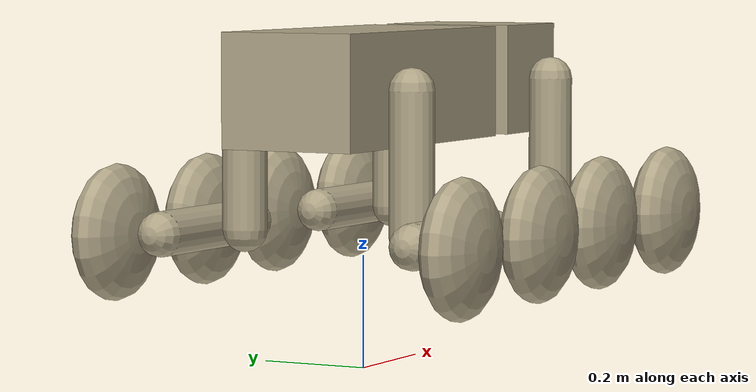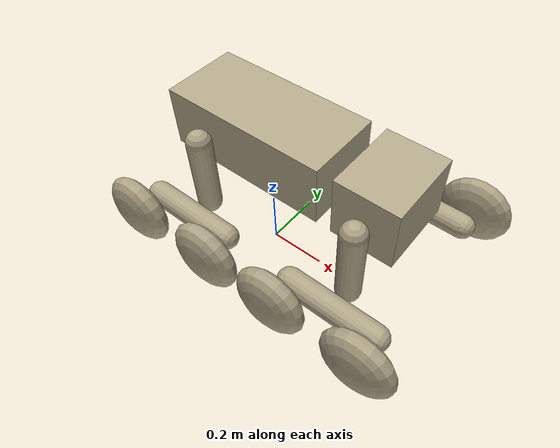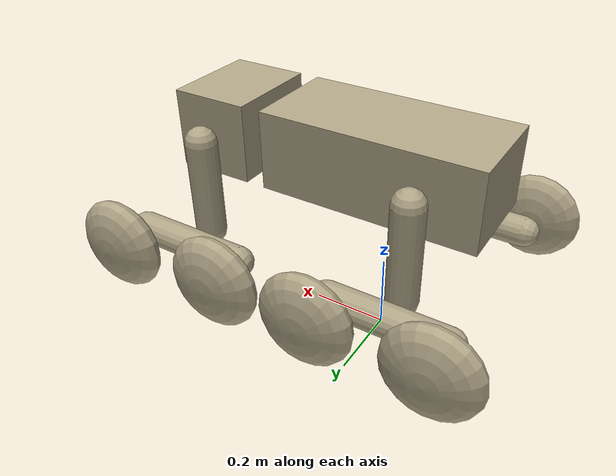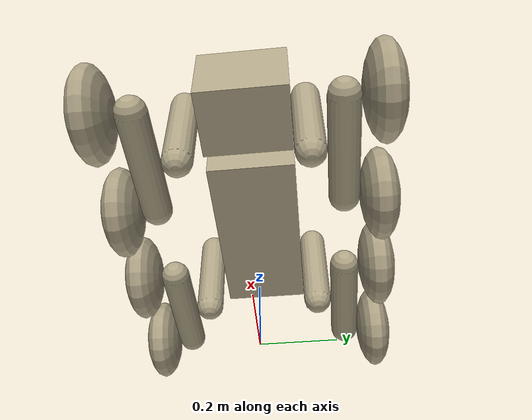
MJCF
<mujoco model="MuJoCo Model">
  <compiler angle="radian"/>

  <worldbody>
    <body name="torso" pos="0 0 0.5">
      <joint name="torso_joint" type="free" limited="false" actuatorfrclimited="false"/>
      <geom size="0.275 0.125 0.1" type="box" mass="36" rgba="0.694118 0.65098 0.533333 1"/>
      <body name="torso_left_thigh" pos="-0.13 0.125 0">
        <joint name="torso_left_thigh_joint" pos="0 0 0" axis="0 1 0" armature="0.08" damping="2"/>
        <geom name="torso_left_thigh_geom" size="0.04 0.125" pos="0 0.04 -0.125" type="capsule" mass="3" rgba="0.694118 0.65098 0.533333 1"/>
        <body name="torso_left_shin" pos="0 0.12 -0.25">
          <joint name="torso_left_thigh_shin_joint" pos="0 0 0" axis="0 1 0" armature="0.08" damping="2"/>
          <geom name="torso_left_shin_geom" size="0.04 0.15" quat="0.707107 0 0.707107 0" type="capsule" mass="2" rgba="0.694118 0.65098 0.533333 1"/>
          <body name="torso_left_front_wheel" pos="0.15 0.09 0">
            <joint name="torso_left_shin_front_wheel_joint" pos="0 0 0" axis="0 1 0" armature="0.004" damping="2"/>
            <geom name="torso_left_front_wheel_geom" size="0.12 0.12 0.05" quat="0.707107 0.707107 0 0" type="ellipsoid" friction="0.9 0.5 0.05" solref="0.1 0.1" mass="2" rgba="0.694118 0.65098 0.533333 1"/>
          </body>
          <body name="torso_left_rear_wheel" pos="-0.15 0.09 0">
            <joint name="torso_left_shin_rear_wheel_joint" pos="0 0 0" axis="0 1 0" armature="0.004" damping="2"/>
            <geom name="torso_left_rear_wheel_geom" size="0.12 0.12 0.05" quat="0.707107 0.707107 0 0" type="ellipsoid" friction="0.9 0.5 0.05" solref="0.1 0.1" mass="2" rgba="0.694118 0.65098 0.533333 1"/>
          </body>
        </body>
      </body>
      <body name="torso_right_thigh" pos="-0.13 -0.125 0">
        <joint name="torso_right_thigh_joint" pos="0 0 0" axis="0 1 0" armature="0.08" damping="2"/>
        <geom name="torso_right_thigh_geom" size="0.04 0.125" pos="0 -0.04 -0.125" type="capsule" mass="3" rgba="0.694118 0.65098 0.533333 1"/>
        <body name="torso_right_shin" pos="0 -0.12 -0.25">
          <joint name="torso_right_thigh_shin_joint" pos="0 0 0" axis="0 1 0" armature="0.08" damping="2"/>
          <geom name="torso_right_shin_geom" size="0.04 0.15" quat="0.707107 0 0.707107 0" type="capsule" mass="2" rgba="0.694118 0.65098 0.533333 1"/>
          <body name="torso_right_front_wheel" pos="0.15 -0.09 0">
            <joint name="torso_right_shin_front_wheel_joint" pos="0 0 0" axis="0 1 0" armature="0.004" damping="2"/>
            <geom name="torso_right_front_wheel_geom" size="0.12 0.12 0.05" quat="0.707107 0.707107 0 0" type="ellipsoid" friction="0.9 0.5 0.05" solref="0.1 0.1" mass="2" rgba="0.694118 0.65098 0.533333 1"/>
          </body>
          <body name="torso_right_rear_wheel" pos="-0.15 -0.09 0">
            <joint name="torso_right_shin_rear_wheel_joint" pos="0 0 0" axis="0 1 0" armature="0.004" damping="2"/>
            <geom name="torso_right_rear_wheel_geom" size="0.12 0.12 0.05" quat="0.707107 0.707107 0 0" type="ellipsoid" friction="0.9 0.5 0.05" solref="0.1 0.1" mass="2" rgba="0.694118 0.65098 0.533333 1"/>
          </body>
        </body>
      </body>
      <body name="head" pos="0.425 0 0">
        <joint name="head_joint" pos="-0.1 0 0" axis="1 0 0" range="-0.0872665 0.0872665"/>
        <geom size="0.1 0.125 0.1" type="box" mass="15" rgba="0.694118 0.65098 0.533333 1"/>
        <body name="head_left_thigh" pos="0 0.125 0">
          <joint name="head_left_thigh_joint" pos="0 0 0" axis="0 1 0" armature="0.08" damping="2"/>
          <geom name="head_left_thigh_geom" size="0.04 0.125" pos="0 0.04 -0.125" type="capsule" mass="3" rgba="0.694118 0.65098 0.533333 1"/>
          <body name="head_left_shin" pos="0 0.12 -0.25">
            <joint name="head_left_thigh_shin_joint" pos="0 0 0" axis="0 1 0" armature="0.08" damping="2"/>
            <geom name="head_left_shin_geom" size="0.04 0.15" quat="0.707107 0 0.707107 0" type="capsule" mass="2" rgba="0.694118 0.65098 0.533333 1"/>
            <body name="head_left_front_wheel" pos="0.15 0.09 0">
              <joint name="head_left_shin_front_wheel_joint" pos="0 0 0" axis="0 1 0" armature="0.004" damping="2"/>
              <geom name="head_left_front_wheel_geom" size="0.12 0.12 0.05" quat="0.707107 0.707107 0 0" type="ellipsoid" friction="0.9 0.5 0.05" solref="0.1 0.1" mass="2" rgba="0.694118 0.65098 0.533333 1"/>
            </body>
            <body name="head_left_rear_wheel" pos="-0.15 0.09 0">
              <joint name="head_left_shin_rear_wheel_joint" pos="0 0 0" axis="0 1 0" armature="0.004" damping="2"/>
              <geom name="head_left_rear_wheel_geom" size="0.12 0.12 0.05" quat="0.707107 0.707107 0 0" type="ellipsoid" friction="0.9 0.5 0.05" solref="0.1 0.1" mass="2" rgba="0.694118 0.65098 0.533333 1"/>
            </body>
          </body>
        </body>
        <body name="head_right_thigh" pos="0 -0.125 0">
          <joint name="head_right_thigh_joint" pos="0 0 0" axis="0 1 0" armature="0.08" damping="2"/>
          <geom name="head_right_thigh_geom" size="0.04 0.125" pos="0 -0.04 -0.125" type="capsule" mass="3" rgba="0.694118 0.65098 0.533333 1"/>
          <body name="head_right_shin" pos="0 -0.12 -0.25">
            <joint name="head_right_thigh_shin_joint" pos="0 0 0" axis="0 1 0" armature="0.08" damping="2"/>
            <geom name="head_right_shin_geom" size="0.04 0.15" quat="0.707107 0 0.707107 0" type="capsule" mass="2" rgba="0.694118 0.65098 0.533333 1"/>
            <body name="head_right_front_wheel" pos="0.15 -0.09 0">
              <joint name="head_right_shin_front_wheel_joint" pos="0 0 0" axis="0 1 0" armature="0.004" damping="2"/>
              <geom name="head_right_front_wheel_geom" size="0.12 0.12 0.05" quat="0.707107 0.707107 0 0" type="ellipsoid" friction="0.9 0.5 0.05" solref="0.1 0.1" mass="2" rgba="0.694118 0.65098 0.533333 1"/>
            </body>
            <body name="head_right_rear_wheel" pos="-0.15 -0.09 0">
              <joint name="head_right_shin_rear_wheel_joint" pos="0 0 0" axis="0 1 0" armature="0.004" damping="2"/>
              <geom name="head_right_rear_wheel_geom" size="0.12 0.12 0.05" quat="0.707107 0.707107 0 0" type="ellipsoid" friction="0.9 0.5 0.05" solref="0.1 0.1" mass="2" rgba="0.694118 0.65098 0.533333 1"/>
            </body>
          </body>
        </body>
      </body>
    </body>
  </worldbody>

  <actuator>
    <general name="bl_hip" joint="torso_left_thigh_joint"/>
    <general name="bl_knee" joint="torso_left_thigh_shin_joint"/>
    <general name="bl_wheel1_joint" joint="torso_left_shin_front_wheel_joint"/>
    <general name="bl_wheel2_joint" joint="torso_left_shin_rear_wheel_joint"/>
    <general name="br_hip" joint="torso_right_thigh_joint"/>
    <general name="br_knee" joint="torso_right_thigh_shin_joint"/>
    <general name="br_wheel1_joint" joint="torso_right_shin_front_wheel_joint"/>
    <general name="br_wheel2_joint" joint="torso_right_shin_rear_wheel_joint"/>
    <general name="fl_hip" joint="head_left_thigh_joint"/>
    <general name="fl_knee" joint="head_left_thigh_shin_joint"/>
    <general name="fl_wheel1_joint" joint="head_left_shin_front_wheel_joint"/>
    <general name="fl_wheel2_joint" joint="head_left_shin_rear_wheel_joint"/>
    <general name="fr_hip" joint="head_right_thigh_joint"/>
    <general name="fr_knee" joint="head_right_thigh_shin_joint"/>
    <general name="fr_wheel1_joint" joint="head_right_shin_front_wheel_joint"/>
    <general name="fr_wheel2_joint" joint="head_right_shin_rear_wheel_joint"/>
  </actuator>
</mujoco>
